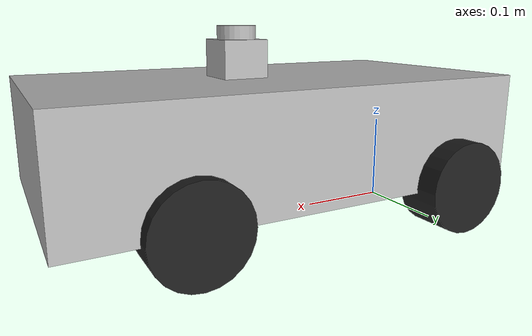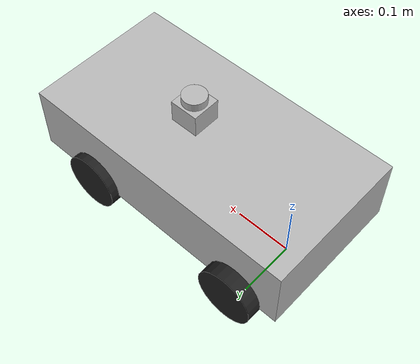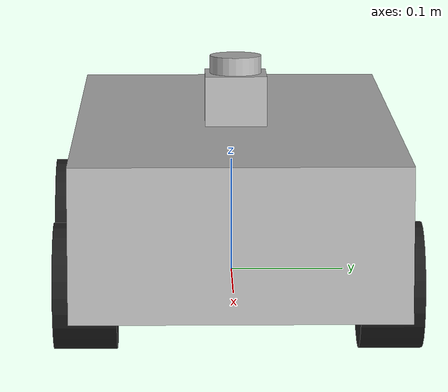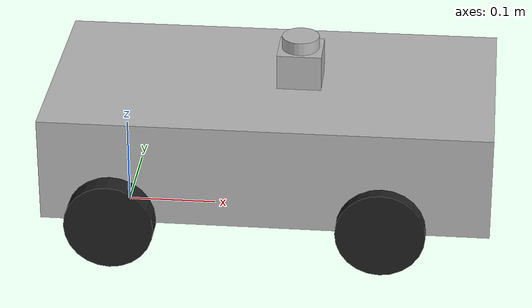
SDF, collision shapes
<?xml version="1.0"?>
<sdf version="1.4">
  <model name="Unicycle">
    <pose>0.0 0 0.05 0 0 0</pose>
    <link name="carbody">
      <pose>0.0 0 0 0 0 0</pose>
      <inertial>
        <pose>0.15 0 0.1 0 0 0</pose>
        <mass>2.3</mass>
        <!-- will have to do xacro-->
        <inertia>
          <ixx>0.41</ixx>
          <ixy>0</ixy>
          <ixz>0</ixz>
          <iyy>0.416553</iyy>
          <iyz>0</iyz>
          <izz>0.216553</izz>
        </inertia>
      </inertial>
      <collision name="carbody_collision">
        <pose>0.17 0.0 0.055 0.0 0.0 0.0</pose>
        <geometry>
          <box>
            <size>0.50 0.26 0.12</size>
          </box>
        </geometry>
        <surface>
          <contact>
            <ode/>
          </contact>
          <friction>
            <ode/>
          </friction>
        </surface>
      </collision>
      <visual name="carbody_visual">
        <pose>0.0 0.005 0.0 0.0 0.0 0.0</pose>
        <geometry>
          <mesh>
            <uri>model://rccar/meshes/traxxas1.dae</uri>
          </mesh>
        </geometry>
      </visual>
      <velocity_decay>
        <linear>0</linear>
        <angular>0</angular>
      </velocity_decay>
      <self_collide>0</self_collide>
    </link>

<link name="rear_right_wheel">
      <pose>0 -0.13 0 1.570796 0 0</pose>
      <inertial>
        <mass>0.6</mass>
        <inertia>
          <ixx>0.01</ixx>
          <ixy>0</ixy>
          <ixz>0</ixz>
          <iyy>0.01</iyy>
          <iyz>0</iyz>
          <izz>0.01</izz>
        </inertia>
      </inertial>
      <collision name="collision">
        <geometry>
          <cylinder>
            <radius>0.05</radius>
            <length>0.05</length>
          </cylinder>
        </geometry>
        <max_contacts>1</max_contacts>
        <surface>
          <friction>
            <ode>
              <mu>5.0</mu>
              <mu2>5.0</mu2>
              <fdir1>0 0 1</fdir1>
              <slip1>0.0</slip1>
              <slip2>0.0</slip2>
            </ode>
          </friction>
          <contact>
            <ode>
              <min_depth>0.005</min_depth>
              <kp>1e8</kp>
            </ode>
          </contact>
        </surface>
      </collision>
      <visual name="visual">
        <geometry>
          <mesh>
            <scale>1 1 1</scale>
            <uri>model://rccar/meshes/Wheel.dae</uri>
          </mesh>
        </geometry>
        <material>
          <script>
            <name>Gazebo/Black</name>
            <uri>__default__</uri>
          </script>
        </material>
      </visual>
    </link>

    <link name="rear_left_wheel">
      <pose>0 0.13 0 1.570796 0 0</pose>
      <inertial>
        <mass>0.6</mass>
        <inertia>
           <ixx>0.01</ixx>
          <ixy>0</ixy>
          <ixz>0</ixz>
          <iyy>0.01</iyy>
          <iyz>0</iyz>
          <izz>0.01</izz>
        </inertia>
      </inertial>
      <collision name="collision">
        <geometry>
          <cylinder>
            <radius>0.05</radius>
            <length>0.05</length>
          </cylinder>
        </geometry>
        <max_contacts>1</max_contacts>
        <surface>
          <friction>
            <ode>
              <mu>5.0</mu>
              <mu2>5.0</mu2>
              <fdir1>0 0 1</fdir1>
              <slip1>0.0</slip1>
              <slip2>0.0</slip2>
            </ode>
          </friction>
          <contact>
            <ode>
              <min_depth>0.005</min_depth>
              <kp>1e8</kp>
            </ode>
          </contact>
        </surface>
      </collision>
      <visual name="visual">
        <geometry>
          <mesh>
            <scale>1 1 1</scale>
            <uri>model://rccar/meshes/Wheel.dae</uri>
          </mesh>
        </geometry>
        <material>
          <script>
            <name>Gazebo/Black</name>
            <uri>__default__</uri>
          </script>
        </material>
      </visual>
      <velocity_decay>
        <linear>0</linear>
        <angular>0</angular>
      </velocity_decay>
      <velocity_decay>
        <linear>0</linear>
        <angular>0</angular>
      </velocity_decay>
      <self_collide>0</self_collide>
    </link>

<joint type="revolute" name="rear_left_wheel_joint">
      <child>rear_left_wheel</child>
      <parent>carbody</parent>
      <axis>
        <xyz>0 1 0.0</xyz>
      </axis>
    </joint>
    <joint type="revolute" name="rear_right_wheel_joint">
      <child>rear_right_wheel</child>
      <parent>carbody</parent>
      <axis>
        <xyz>0 1 0.0</xyz>
      </axis>
    </joint>

    <joint type="revolute" name="rear_differential_joint">
      <child>rear_right_wheel</child>
      <parent>rear_left_wheel</parent>
      <axis>
        <xyz>0 1 0</xyz>
        <dynamics>
          <damping>0</damping>
        </dynamics>
      </axis>
      <physics>
        <ode>
          <erp>0</erp>
          <cfm>.1</cfm>
        </ode>
      </physics>
    </joint>

    <link name="steeringblock1">
      <pose>0.3 -0.12 0 0 0 0</pose>
      <inertial>
        <pose>0 0 0 0 0 0</pose>
        <mass>0.1 </mass>
        <!-- very less mass-->
        <inertia>
          <ixx> 1e-3 </ixx>
          <ixy>0</ixy>
          <ixz>0</ixz>
          <iyy> 1e-3 </iyy>
          <iyz>0</iyz>
          <izz> 1e-3 </izz>
        </inertia>
      </inertial>
    </link>
    <joint name="base_to_steeringblock1" type="revolute">
      <child>steeringblock1</child>
      <parent>carbody</parent>
      <axis>
        <xyz>0 0 1</xyz>
        <limit>
          <lower>-0.785</lower>
          <upper>0.785</upper>
        </limit>
        <dynamics>
          <damping>2.0</damping>
        </dynamics>
      </axis>
			<physics>
				<ode>
					<limit>
						<cfm>0.0</cfm>
						<erp>0.5</erp>
					</limit>
				</ode>
			</physics>
    </joint>
    <link name="frontwheel1">
      <pose>0.3 -0.12 0 -1.570796 0 0</pose>
      <inertial>
        <pose>0 0 0 0 0 0</pose>
        <mass>0.05</mass>
        <inertia>
          <ixx>0.0001</ixx>
          <ixy>0</ixy>
          <ixz>0</ixz>
          <iyy>0.0001</iyy>
          <iyz>0</iyz>
          <izz>0.0001</izz>
        </inertia>
      </inertial>
      <collision name="frontwheel1_collision">
        <pose>0 0 0 0 0 0</pose>
        <geometry>
          <cylinder>
            <length>0.05</length>
            <radius>0.05</radius>
          </cylinder>
        </geometry>
        <max_contacts>1</max_contacts>
        <surface>
          <friction>
            <ode>
              <mu>5.0</mu>
              <mu2>5.0</mu2>
              <fdir1>0 0 1</fdir1>
              <slip1>0.0</slip1>
              <slip2>0.0</slip2>
            </ode>
          </friction>
          <contact>
            <ode>
              <min_depth>0.005</min_depth>
              <kp>1e8</kp>
            </ode>
          </contact>
        </surface>
      </collision>
      <visual name="frontwheel1_visual">
        <pose>0 0 0 0 0 0</pose>
        <geometry>
          <mesh>
            <scale>1 1 1</scale>
            <uri>model://rccar/meshes/Wheel.dae</uri>
          </mesh>
        </geometry>
        <material>
          <script>
            <name>Gazebo/Black</name>
            <uri>__default__</uri>
          </script>
        </material>
      </visual>
      <velocity_decay>
        <linear>0</linear>
        <angular>0</angular>
      </velocity_decay>
      <self_collide>0</self_collide>
    </link>
    <joint name="steeringblock1_to_frontwheel1" type="revolute">
      <child>frontwheel1</child>
      <parent>steeringblock1</parent>
      <axis>
        <xyz>0 1 0</xyz>
        <dynamics>
          <damping>0.0</damping>
        </dynamics>
      </axis>
    </joint>
    <link name="steeringblock2">
      <pose>0.3 0.12 0 0 0 0</pose>
      <inertial>
        <pose>0 0 0 0 0 0</pose>
        <mass>0.1 </mass>
        <!-- very less mass-->
        <inertia>
          <ixx> 1e-3 </ixx>
          <ixy>0</ixy>
          <ixz>0</ixz>
          <iyy> 1e-3 </iyy>
          <iyz>0</iyz>
          <izz> 1e-3 </izz>
        </inertia>
      </inertial>
    </link>
    <joint name="base_to_steeringblock2" type="revolute">
      <child>steeringblock2</child>
      <parent>carbody</parent>
      <axis>
        <xyz>0 0 1</xyz>
        <limit>
          <lower>-0.785</lower>
          <upper>0.785</upper>
        </limit>
        <dynamics>
          <damping>2.0</damping>
        </dynamics>
      </axis>
			<physics>
        <ode>
          <limit>
            <cfm>0.000000</cfm>
            <erp>0.500000</erp>
          </limit>
        </ode>
      </physics>
    </joint>
    <link name="frontwheel2">
      <pose>0.3 0.12 0 -1.570796 0 0</pose>
      <inertial>
        <pose>0 0 0 0 -0 0</pose>
        <mass>0.05</mass>
        <inertia>
          <ixx>0.0001</ixx>
          <ixy>0</ixy>
          <ixz>0</ixz>
          <iyy>0.0001</iyy>
          <iyz>0</iyz>
          <izz>0.0001</izz>
        </inertia>
      </inertial>
      <collision name="frontwheel2_collision">
        <pose>0 0 0 0 0 0</pose>
        <geometry>
          <cylinder>
            <length>0.05</length>
            <radius>0.05</radius>
          </cylinder>
        </geometry>
        <max_contacts>1</max_contacts>
        <surface>
          <friction>
            <ode>
              <mu>5.0</mu>
              <mu2>5.0</mu2>
              <fdir1>0 0 1</fdir1>
              <slip1>0.0</slip1>
              <slip2>0.0</slip2>
            </ode>
          </friction>
          <contact>
            <ode>
              <min_depth>0.005</min_depth>
              <kp>1e8</kp>
            </ode>
          </contact>
        </surface>
      </collision>
      <visual name="frontwheel2_visual">
        <pose>0 0 0 0 -0 0</pose>
        <geometry>
          <mesh>
            <scale>1 1 1</scale>
            <uri>model://rccar/meshes/Wheel.dae</uri>
          </mesh>
        </geometry>
        <material>
          <script>
            <name>Gazebo/Black</name>
            <uri>__default__</uri>
          </script>
        </material>
      </visual>
      <velocity_decay>
        <linear>0</linear>
        <angular>0</angular>
      </velocity_decay>
      <self_collide>0</self_collide>
    </link>
    <joint name="steeringblock2_to_frontwheel2" type="revolute">
      <child>frontwheel2</child>
      <parent>steeringblock2</parent>
      <axis>
        <xyz>0 1 0</xyz>
        <dynamics>
          <damping>0.0</damping>
        </dynamics>
      </axis>
    </joint>
      <link name='hokuyo::link'>
        <inertial>
          <mass>0.001000</mass>
          <inertia>
            <ixx>.0001000</ixx>
            <ixy>0.000000</ixy>
            <ixz>0.000000</ixz>
            <iyy>.0001000</iyy>
            <iyz>0.000000</iyz>
            <izz>.00010000</izz>
          </inertia>
        </inertial>
        <visual name='visual'>
          <geometry>
            <mesh>
              <uri>model://hokuyo/meshes/hokuyo.dae</uri>
            </mesh>
          </geometry>
        </visual>
        <collision name='collision-base'>
          <pose>0.000000 0.000000 0.000 0.000000 0.000000 0.000000</pose>
          <geometry>
            <box>
              <size>0.050000 0.050000 0.041000</size>
            </box>
          </geometry>
          <surface>
            <bounce/>
            <friction>
              <ode/>
            </friction>
            <contact>
              <ode/>
            </contact>
          </surface>
        </collision>
        <collision name='collision-top'>
          <pose>0.000000 0.000000 0.020500 0.000000 0.000000 0.000000</pose>
          <geometry>
            <cylinder>
              <radius>0.021000</radius>
              <length>0.029000</length>
            </cylinder>
          </geometry>
          <surface>
            <bounce/>
            <friction>
              <ode/>
            </friction>
            <contact>
              <ode/>
            </contact>
          </surface>
        </collision>
        <sensor name='laser' type='ray'>
          <pose>0.01000 0.000000 0.017500 0.000000 0.000000 0.000000</pose>
          <ray>
            <scan>
              <horizontal>
                <samples>640</samples>
                <resolution>1.000000</resolution>
                <min_angle>-2.268890</min_angle>
                <max_angle>2.268899</max_angle>
              </horizontal>
            </scan>
            <range>
              <min>0.50000</min>
              <max>10.000000</max>
              <resolution>0.010000</resolution>
            </range>
          </ray>
          <plugin name='laser' filename='libRayPlugin.so'/>
          <always_on>1</always_on>
          <update_rate>30.000000</update_rate>
          <visualize>1</visualize>
        </sensor>
        <velocity_decay>
          <linear>0.000000</linear>
          <angular>0.000000</angular>
        </velocity_decay>
        <pose>0.200000 0.000000 0.135000 0.000000 0.000000 0.000000</pose>
        <self_collide>0</self_collide>
        <kinematic>0</kinematic>
        <gravity>1</gravity>
      </link>
      <joint name='hokuyo_joint' type='revolute'>
        <child>hokuyo::link</child>
        <parent>carbody</parent>
        <axis>
          <xyz>0.000000 0.000000 1.000000</xyz>
          <limit>
            <upper>0.000000</upper>
            <lower>0.000000</lower>
          </limit>
        </axis>
      </joint>
  </model>
</sdf>
